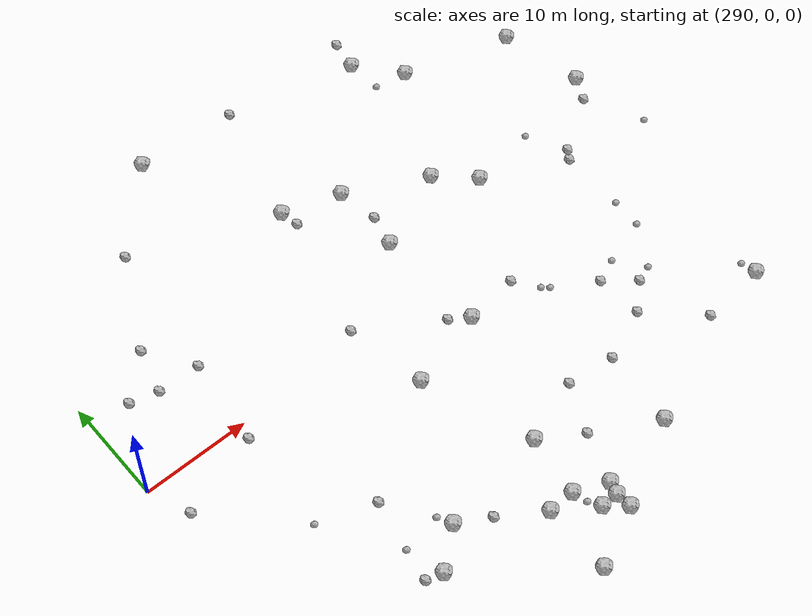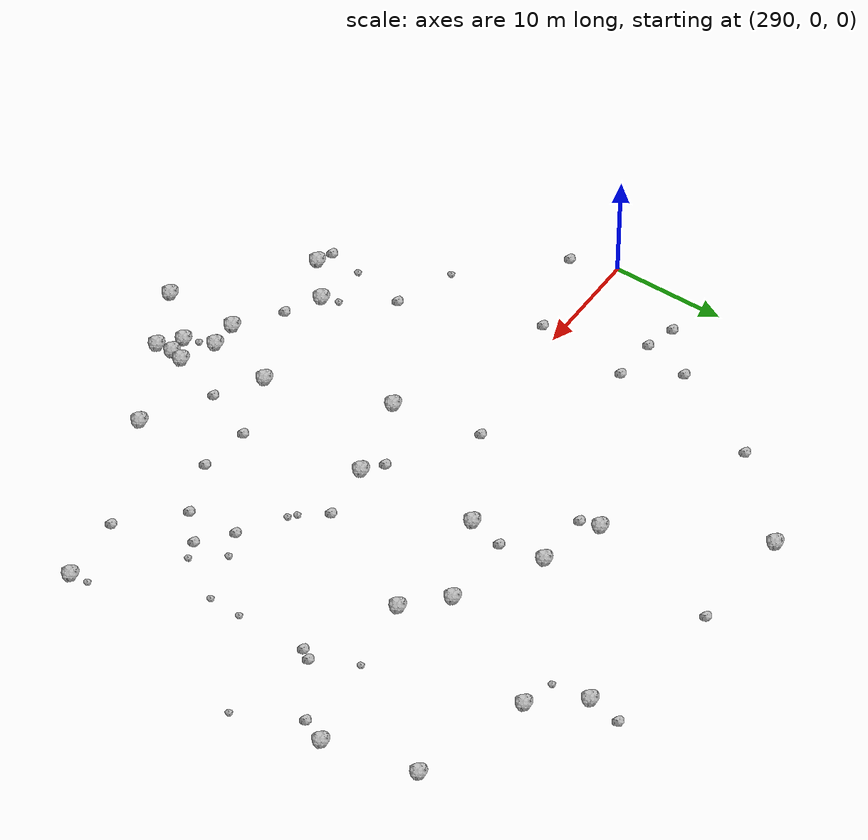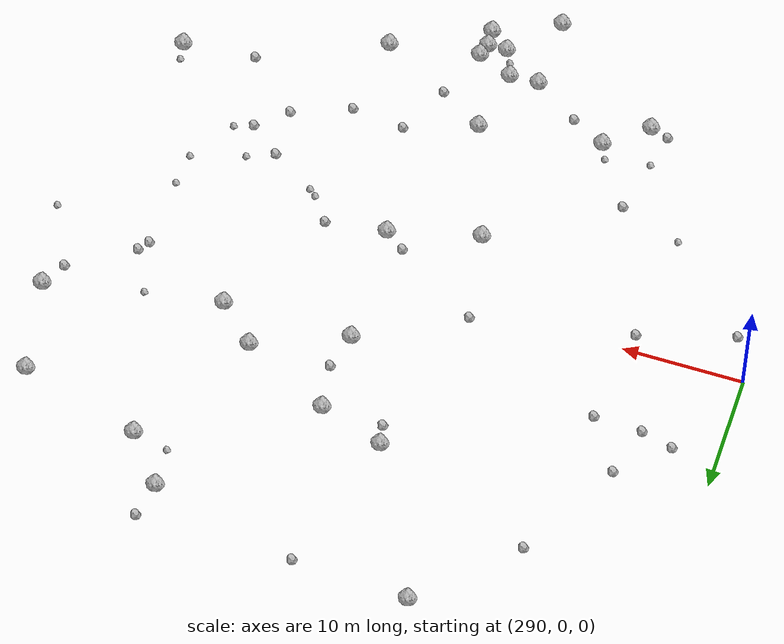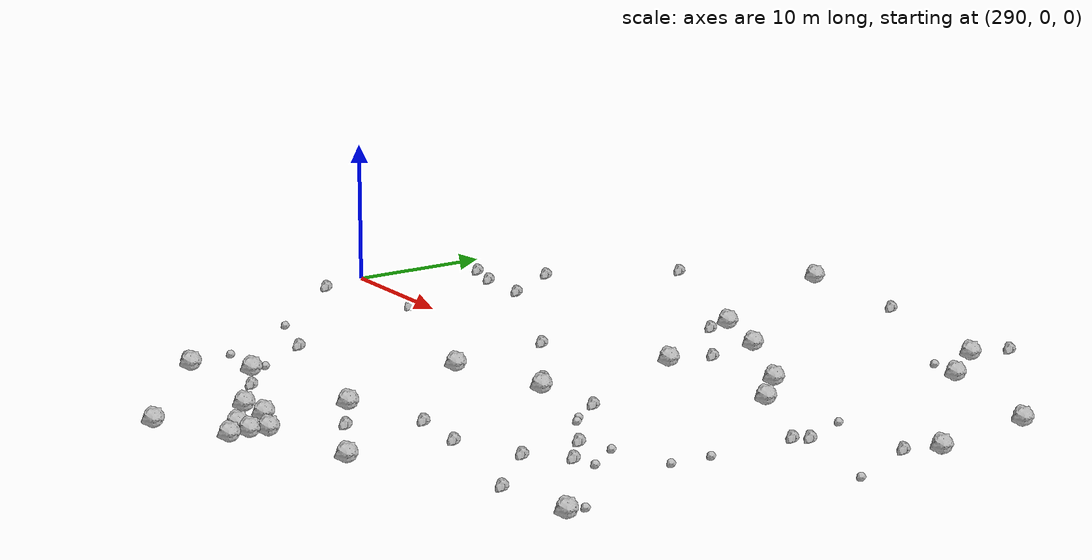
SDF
<sdf version="1.6">
 <world name="default">
  <include><uri>model://sun</uri></include>
  <model name="rock1_8_3">
   <include><uri>model://rock1</uri><pose>344.3973919541261 16.858581386138887 0.5 0 0 0</pose></include>
  </model>
  <model name="rock1_8_4">
   <include><uri>model://rock1</uri><pose>313.97678093878875 -29.192295370339796 0.5 0 0 0</pose></include>
  </model>
  <model name="rock1_8_5">
   <include><uri>model://rock1</uri><pose>320.82930990445647 5.910102869147622 0.5 0 0 0</pose></include>
  </model>
  <model name="rock1_8_6">
   <include><uri>model://rock1</uri><pose>327.08467575078134 -22.616800704105408 0.5 0 0 0</pose></include>
  </model>
  <model name="rock1_8_7">
   <include><uri>model://rock1</uri><pose>303.8817373479941 -21.241333667818296 0.5 0 0 0</pose></include>
  </model>
  <model name="rock1_8_8">
   <include><uri>model://rock1</uri><pose>307.2450817257206 -18.466796160953283 0.5 0 0 0</pose></include>
  </model>
  <model name="rock1_8_9">
   <include><uri>model://rock1</uri><pose>317.59261109304356 -25.13150865020279 0.5 0 0 0</pose></include>
  </model>
  <model name="rock1_8_10">
   <include><uri>model://rock1</uri><pose>346.0675103969252 8.900019798099876 0.5 0 0 0</pose></include>
  </model>
  <model name="rock1_8_11">
   <include><uri>model://rock1</uri><pose>309.101936737079 27.10730800257398 0.5 0 0 0</pose></include>
  </model>
  <model name="rock1_8_12">
   <include><uri>model://rock1</uri><pose>343.47004928906455 -17.227156825801124 0.5 0 0 0</pose></include>
  </model>
  <model name="rock1_8_13">
   <include><uri>model://rock1</uri><pose>316.556394929095 -22.652084813327004 0.5 0 0 0</pose></include>
  </model>
  <model name="rock1_8_14">
   <include><uri>model://rock1</uri><pose>328.342136748692 9.111423994307607 0.5 0 0 0</pose></include>
  </model>
  <model name="rock1_8_15">
   <include><uri>model://rock1</uri><pose>319.3436123055812 -26.62130970585412 0.5 0 0 0</pose></include>
  </model>
  <model name="rock1_8_16">
   <include><uri>model://rock1</uri><pose>331.57062019695377 6.068116632932998 0.5 0 0 0</pose></include>
  </model>
  <model name="rock1_8_17">
   <include><uri>model://rock1</uri><pose>319.21374027538684 -25.11783192444942 0.5 0 0 0</pose></include>
  </model>
  <model name="rock1_8_18">
   <include><uri>model://rock1</uri><pose>315.4887929464102 14.650025003797793 0.5 0 0 0</pose></include>
  </model>
  <model name="rock1_8_19">
   <include><uri>model://rock1</uri><pose>330.93058128315124 23.717944347068894 0.5 0 0 0</pose></include>
  </model>
  <model name="rock1_8_20">
   <include><uri>model://rock1</uri><pose>314.0653030394446 -22.71684921825274 0.5 0 0 0</pose></include>
  </model>
  <model name="rock1_8_21">
   <include><uri>model://rock1</uri><pose>317.46832634653384 -16.981235238234518 0.5 0 0 0</pose></include>
  </model>
  <model name="rock1_8_22">
   <include><uri>model://rock1</uri><pose>319.572769494073 -23.95807785659443 0.5 0 0 0</pose></include>
  </model>
  <model name="rock1_8_23">
   <include><uri>model://rock1</uri><pose>313.87090213031087 -6.597342929515918 0.5 0 0 0</pose></include>
  </model>
  <model name="rock1_8_24">
   <include><uri>model://rock1</uri><pose>320.90679117998707 12.858109502769096 0.5 0 0 0</pose></include>
  </model>
  <model name="rock1_8_25">
   <include><uri>model://rock1</uri><pose>334.20076592449925 19.737530816615745 0.5 0 0 0</pose></include>
  </model>
  <model name="rock1_8_26">
   <include><uri>model://rock1</uri><pose>321.32571148499534 -4.607420898616478 0.5 0 0 0</pose></include>
  </model>
  <model name="rock2_8_0">
   <include><uri>model://rock2</uri><pose>327.8360673263886 -15.37364302750694 0.3 0 0 0</pose></include>
  </model>
  <model name="rock2_8_1">
   <include><uri>model://rock2</uri><pose>339.8588983928893 3.387914826834283 0.3 0 0 0</pose></include>
  </model>
  <model name="rock2_8_2">
   <include><uri>model://rock2</uri><pose>302.3066733746524 -20.73717293117175 0.3 0 0 0</pose></include>
  </model>
  <model name="rock2_8_3">
   <include><uri>model://rock2</uri><pose>296.29363983471217 7.037658136767163 0.3 0 0 0</pose></include>
  </model>
  <model name="rock2_8_4">
   <include><uri>model://rock2</uri><pose>297.4182226313404 11.280479824968971 0.3 0 0 0</pose></include>
  </model>
  <model name="rock2_8_5">
   <include><uri>model://rock2</uri><pose>315.81013264002644 12.951404135303143 0.3 0 0 0</pose></include>
  </model>
  <model name="rock2_8_6">
   <include><uri>model://rock2</uri><pose>291.54303245070435 -3.834177632219223 0.3 0 0 0</pose></include>
  </model>
  <model name="rock2_8_7">
   <include><uri>model://rock2</uri><pose>321.5247024589413 9.020508294865706 0.3 0 0 0</pose></include>
  </model>
  <model name="rock2_8_8">
   <include><uri>model://rock2</uri><pose>302.0139455474657 19.993160971390672 0.3 0 0 0</pose></include>
  </model>
  <model name="rock2_8_9">
   <include><uri>model://rock2</uri><pose>331.4394236641871 26.70349263330185 0.3 0 0 0</pose></include>
  </model>
  <model name="rock2_8_10">
   <include><uri>model://rock2</uri><pose>344.9611288637909 6.746008105763842 0.3 0 0 0</pose></include>
  </model>
  <model name="rock2_8_11">
   <include><uri>model://rock2</uri><pose>310.1566663872621 -20.075660806229344 0.3 0 0 0</pose></include>
  </model>
  <model name="rock2_8_12">
   <include><uri>model://rock2</uri><pose>326.3847396984717 -3.92560955823091 0.3 0 0 0</pose></include>
  </model>
  <model name="rock2_8_13">
   <include><uri>model://rock2</uri><pose>312.44104464899726 1.1743770046826363 0.3 0 0 0</pose></include>
  </model>
  <model name="rock2_8_14">
   <include><uri>model://rock2</uri><pose>332.65892104074754 -13.40912647767954 0.3 0 0 0</pose></include>
  </model>
  <model name="rock2_8_15">
   <include><uri>model://rock2</uri><pose>303.8380652124129 -12.981132724778778 0.3 0 0 0</pose></include>
  </model>
  <model name="rock2_8_16">
   <include><uri>model://rock2</uri><pose>339.2297856742667 2.4569408583433585 0.3 0 0 0</pose></include>
  </model>
  <model name="rock2_8_17">
   <include><uri>model://rock2</uri><pose>321.2360314182986 -19.34906022885216 0.3 0 0 0</pose></include>
  </model>
  <model name="rock2_8_18">
   <include><uri>model://rock2</uri><pose>293.6508834823616 7.734147021130646 0.3 0 0 0</pose></include>
  </model>
  <model name="rock2_8_19">
   <include><uri>model://rock2</uri><pose>323.31875162789646 -14.840497471354308 0.3 0 0 0</pose></include>
  </model>
  <model name="rock2_8_20">
   <include><uri>model://rock2</uri><pose>318.6231666975994 26.647720489123422 0.3 0 0 0</pose></include>
  </model>
  <model name="rock2_8_21">
   <include><uri>model://rock2</uri><pose>332.3993431694225 -9.019029234347336 0.3 0 0 0</pose></include>
  </model>
  <model name="rock2_8_22">
   <include><uri>model://rock2</uri><pose>300.2920946233448 6.893375630950324 0.3 0 0 0</pose></include>
  </model>
  <model name="rock2_8_23">
   <include><uri>model://rock2</uri><pose>299.3216556613415 -1.4380623335528746 0.3 0 0 0</pose></include>
  </model>
  <model name="rock2_8_24">
   <include><uri>model://rock2</uri><pose>335.0687430550166 -11.19175602711352 0.3 0 0 0</pose></include>
  </model>
  <model name="rock2_8_25">
   <include><uri>model://rock2</uri><pose>337.26251795108976 -17.78969145385015 0.3 0 0 0</pose></include>
  </model>
  <model name="rock2_8_26">
   <include><uri>model://rock2</uri><pose>319.5802610656145 -3.35618548080555 0.3 0 0 0</pose></include>
  </model>
  <model name="rock3_8_0">
   <include><uri>model://rock3</uri><pose>316.92497210891474 -24.016177437046338 0.2 0 0 0</pose></include>
  </model>
  <model name="rock3_8_1">
   <include><uri>model://rock3</uri><pose>339.0229721217602 -6.696952927968848 0.2 0 0 0</pose></include>
  </model>
  <model name="rock3_8_2">
   <include><uri>model://rock3</uri><pose>334.6185046601073 -8.122611568109207 0.2 0 0 0</pose></include>
  </model>
  <model name="rock3_8_3">
   <include><uri>model://rock3</uri><pose>347.602431766267 1.3168925955347746 0.2 0 0 0</pose></include>
  </model>
  <model name="rock3_8_4">
   <include><uri>model://rock3</uri><pose>298.5846505215075 -11.172607911958043 0.2 0 0 0</pose></include>
  </model>
  <model name="rock3_8_5">
   <include><uri>model://rock3</uri><pose>339.18588790378465 -3.803048095372578 0.2 0 0 0</pose></include>
  </model>
  <model name="rock3_8_6">
   <include><uri>model://rock3</uri><pose>302.85012237236117 -17.745884931891958 0.2 0 0 0</pose></include>
  </model>
  <model name="rock3_8_7">
   <include><uri>model://rock3</uri><pose>327.9627036332131 -6.154265491806928 0.2 0 0 0</pose></include>
  </model>
  <model name="rock3_8_8">
   <include><uri>model://rock3</uri><pose>328.5781627859068 -6.683025493346378 0.2 0 0 0</pose></include>
  </model>
  <model name="rock3_8_9">
   <include><uri>model://rock3</uri><pose>337.9552648376485 7.02196875007013 0.2 0 0 0</pose></include>
  </model>
  <model name="rock3_8_10">
   <include><uri>model://rock3</uri><pose>331.1449291412435 20.361694513873694 0.2 0 0 0</pose></include>
  </model>
  <model name="rock3_8_11">
   <include><uri>model://rock3</uri><pose>343.1516506308262 -15.738943116096923 0.2 0 0 0</pose></include>
  </model>
  <model name="rock3_8_12">
   <include><uri>model://rock3</uri><pose>306.5832807732467 -17.123539511539924 0.2 0 0 0</pose></include>
  </model>
  <model name="rock3_8_13">
   <include><uri>model://rock3</uri><pose>336.6129562466472 -10.674207391926757 0.2 0 0 0</pose></include>
  </model>
 </world>
</sdf>
